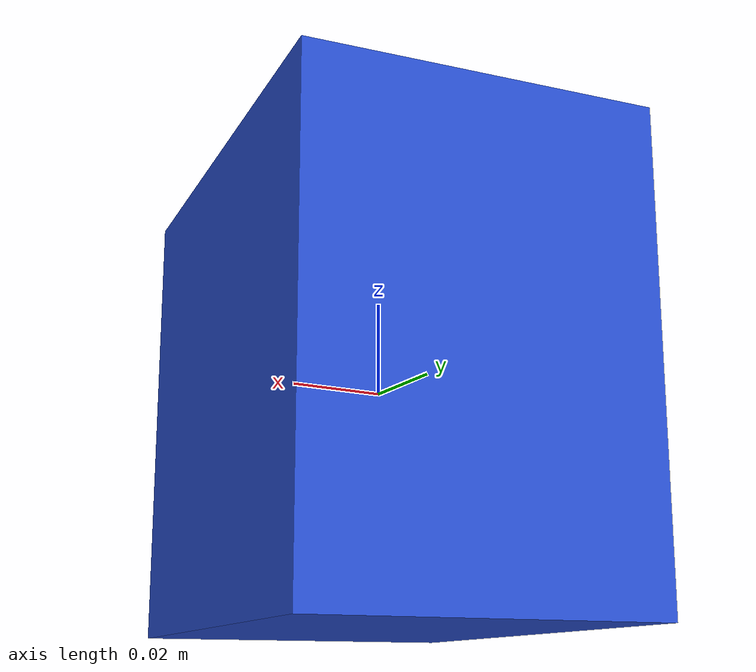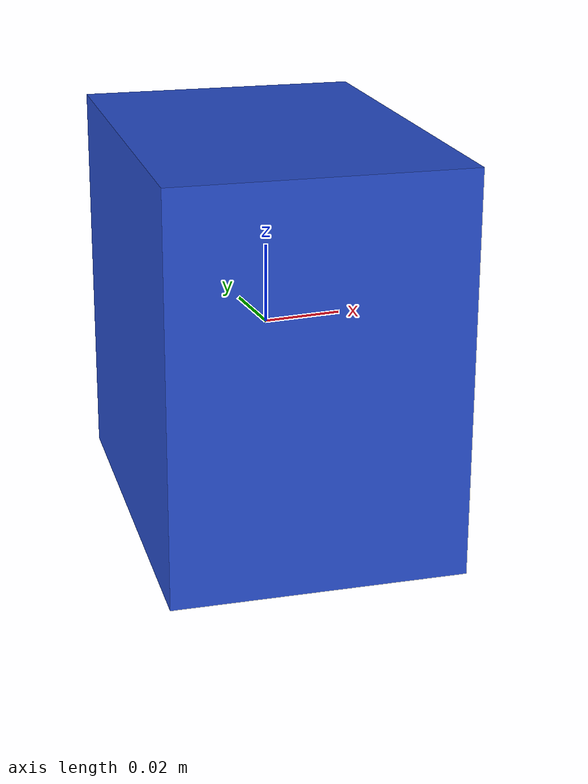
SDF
<sdf version="1.6"><model name="model_1"><static>true</static><link name="link"><pose>0 0 0 0 0 1.4586281957628942</pose><collision name="collision"><geometry><box><size>0.1038431250170456 0.0724819858848923 0.1</size></box></geometry></collision><visual name="visual"><geometry><box><size>0.1038431250170456 0.0724819858848923 0.1</size></box></geometry><material><script><name>Gazebo/Blue</name><uri>file://media/materials/scripts/gazebo.material</uri></script></material></visual></link></model></sdf>
